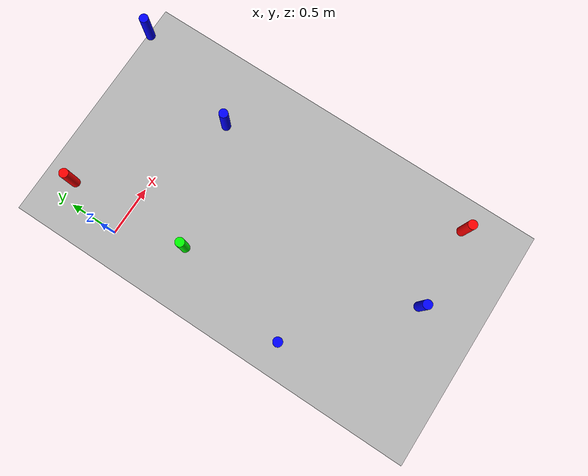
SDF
<sdf version="1.6">
 <world name="default">
  <light name="sun" type="directional">
   <pose>0 0 10 0 -0 0</pose>
   <diffuse>0.8 0.8 0.8 1</diffuse>
   <specular>0.1 0.1 0.1 1</specular>
   <attenuation>
    <range>1000</range>
    <constant>0.9</constant>
    <linear>0.01</linear>
    <quadratic>0.001</quadratic>
   </attenuation>
   <direction>-0.5 0.5 -1</direction>
  </light>
  <physics name="default_physics" default="0" type="ode">
   <max_step_size>0.01</max_step_size>
   <real_time_factor>1</real_time_factor>
   <real_time_update_rate>100</real_time_update_rate>
  </physics>
  <gravity>0 0 -9.8</gravity>
  <magnetic_field>6e-06 2.3e-05 -4.2e-05</magnetic_field>
  <atmosphere type="adiabatic"/>
  <scene><ambient>0.4 0.4 0.4 1</ambient><background>0.7 0.7 0.7 1</background><shadows>1</shadows></scene>
  <spherical_coordinates>
   <surface_model>EARTH_WGS84</surface_model>
   <latitude_deg>0</latitude_deg>
   <longitude_deg>0</longitude_deg>
   <elevation>0</elevation>
   <heading_deg>0</heading_deg>
  </spherical_coordinates>
  <model name="red_rover">
   <pose>1.81713 -2.73754 0.176627 1.3e-05 0.000107 -0.003683</pose>
   <link name="link">
    <inertial>
     <mass>1</mass>
     <inertia><ixx>0.145833</ixx><ixy>0</ixy><ixz>0</ixz><iyy>0.145833</iyy><iyz>0</iyz><izz>0.125</izz></inertia>
    </inertial>
    <collision name="collision">
     <geometry><cylinder><radius>0.0457</radius><length>0.355</length></cylinder></geometry>
    </collision>
    <visual name="visual">
     <geometry><cylinder><radius>0.0457</radius><length>0.355</length></cylinder></geometry>
     <material>
      <ambient>1 0 0 1</ambient>
      <diffuse>1 0 0 1</diffuse>
      <specular>0.1 0.1 0.1 1</specular>
      <emissive>0 0 0 0</emissive>
     </material>
    </visual>
   </link>
  </model>
  <model name="blue_rover">
   <pose>0.25052 -0.640229 0.176627 1.3e-05 0.000107 -0.002532</pose>
   <link name="link">
    <inertial>
     <mass>1</mass>
     <inertia><ixx>0.145833</ixx><ixy>0</ixy><ixz>0</ixz><iyy>0.145833</iyy><iyz>0</iyz><izz>0.125</izz></inertia>
    </inertial>
    <collision name="collision">
     <geometry><cylinder><radius>0.0457</radius><length>0.355</length></cylinder></geometry>
    </collision>
    <visual name="visual">
     <geometry><cylinder><radius>0.0457</radius><length>0.355</length></cylinder></geometry>
     <material>
      <ambient>0 1 0 1</ambient>
      <diffuse>0 1 0 1</diffuse>
      <specular>0.1 0.1 0.1 1</specular>
      <emissive>0 0 0 0</emissive>
     </material>
    </visual>
   </link>
  </model>
  <model name="green_rover">
   <pose>1.45884 -0.2874 0.176627 1.3e-05 0.000107 -0.003601</pose>
   <link name="link">
    <inertial>
     <mass>1</mass>
     <inertia><ixx>0.145833</ixx><ixy>0</ixy><ixz>0</ixz><iyy>0.145833</iyy><iyz>0</iyz><izz>0.125</izz></inertia>
    </inertial>
    <collision name="collision">
     <geometry><cylinder><radius>0.0457</radius><length>0.355</length></cylinder></geometry>
    </collision>
    <visual name="visual">
     <geometry><cylinder><radius>0.0457</radius><length>0.355</length></cylinder></geometry>
     <material>
      <ambient>0 0 1 1</ambient>
      <diffuse>0 0 1 1</diffuse>
      <specular>0.1 0.1 0.1 1</specular>
      <emissive>0 0 0 0</emissive>
     </material>
    </visual>
   </link>
  </model>
  <model name="roadnetwork">
   <pose>0.9144 -1.2192 0 0 0 -1.57</pose>
   <static>1</static>
   <link name="link">
    <collision name="collision">
     <geometry><plane><normal>0 0 1</normal><size>4.2672 2.4384</size></plane></geometry>
     <surface><friction><ode><mu>100</mu><mu2>50</mu2></ode></friction></surface>
    </collision>
    <visual name="visual">
     <cast_shadows>0</cast_shadows>
     <geometry><plane><normal>0 0 1</normal><size>4.2672 2.4384</size></plane></geometry>
     <material>
      <script>
       <uri>model://roadnetwork/materials/scripts</uri>
       <uri>model://roadnetwork/materials/textures</uri>
       <name>RoadNetwork/Image</name>
      </script>
     </material>
    </visual>
   </link>
  </model>
  <model name="green_rover_clone">
   <pose>1.83129 0.884442 0.176627 1.3e-05 0.000107 -0.003756</pose>
   <link name="link">
    <inertial>
     <mass>1</mass>
     <inertia><ixx>0.145833</ixx><ixy>0</ixy><ixz>0</ixz><iyy>0.145833</iyy><iyz>0</iyz><izz>0.125</izz></inertia>
    </inertial>
    <collision name="collision">
     <geometry><cylinder><radius>0.0457</radius><length>0.355</length></cylinder></geometry>
    </collision>
    <visual name="visual">
     <geometry><cylinder><radius>0.0457</radius><length>0.355</length></cylinder></geometry>
     <material>
      <ambient>0 0 1 1</ambient>
      <diffuse>0 0 1 1</diffuse>
      <specular>0.1 0.1 0.1 1</specular>
      <emissive>0 0 0 0</emissive>
     </material>
    </visual>
   </link>
  </model>
  <model name="red_rover_clone">
   <pose>0.19152 0.604376 0.176627 1.3e-05 0.000107 -0.003683</pose>
   <link name="link">
    <inertial>
     <mass>1</mass>
     <inertia><ixx>0.145833</ixx><ixy>0</ixy><ixz>0</ixz><iyy>0.145833</iyy><iyz>0</iyz><izz>0.125</izz></inertia>
    </inertial>
    <collision name="collision">
     <geometry><cylinder><radius>0.0457</radius><length>0.355</length></cylinder></geometry>
    </collision>
    <visual name="visual">
     <geometry><cylinder><radius>0.0457</radius><length>0.355</length></cylinder></geometry>
     <material>
      <ambient>1 0 0 1</ambient>
      <diffuse>1 0 0 1</diffuse>
      <specular>0.1 0.1 0.1 1</specular>
      <emissive>0 0 0 0</emissive>
     </material>
    </visual>
   </link>
  </model>
  <model name="purple_rover_clone">
   <pose>0.986559 -2.7624 0.176627 1.3e-05 0.000107 -0.003643</pose>
   <link name="link">
    <inertial>
     <mass>1</mass>
     <inertia><ixx>0.145833</ixx><ixy>0</ixy><ixz>0</ixz><iyy>0.145833</iyy><iyz>0</iyz><izz>0.125</izz></inertia>
    </inertial>
    <collision name="collision">
     <geometry><cylinder><radius>0.0457</radius><length>0.355</length></cylinder></geometry>
    </collision>
    <visual name="visual">
     <geometry><cylinder><radius>0.0457</radius><length>0.355</length></cylinder></geometry>
     <material>
      <ambient>0 0 1 1</ambient>
      <diffuse>0 0 1 1</diffuse>
      <specular>0.1 0.1 0.1 1</specular>
      <emissive>0 0 0 0</emissive>
     </material>
    </visual>
   </link>
  </model>
  <model name="purple_rover_clone_clone">
   <pose>-0.000331 -1.84552 0.176627 1.3e-05 0.000107 -0.003643</pose>
   <link name="link">
    <inertial>
     <mass>1</mass>
     <inertia><ixx>0.145833</ixx><ixy>0</ixy><ixz>0</ixz><iyy>0.145833</iyy><iyz>0</iyz><izz>0.125</izz></inertia>
    </inertial>
    <collision name="collision">
     <geometry><cylinder><radius>0.0457</radius><length>0.355</length></cylinder></geometry>
    </collision>
    <visual name="visual">
     <geometry><cylinder><radius>0.0457</radius><length>0.355</length></cylinder></geometry>
     <material>
      <ambient>0 0 1 1</ambient>
      <diffuse>0 0 1 1</diffuse>
      <specular>0.1 0.1 0.1 1</specular>
      <emissive>0 0 0 0</emissive>
     </material>
    </visual>
   </link>
  </model>
 </world>
</sdf>
